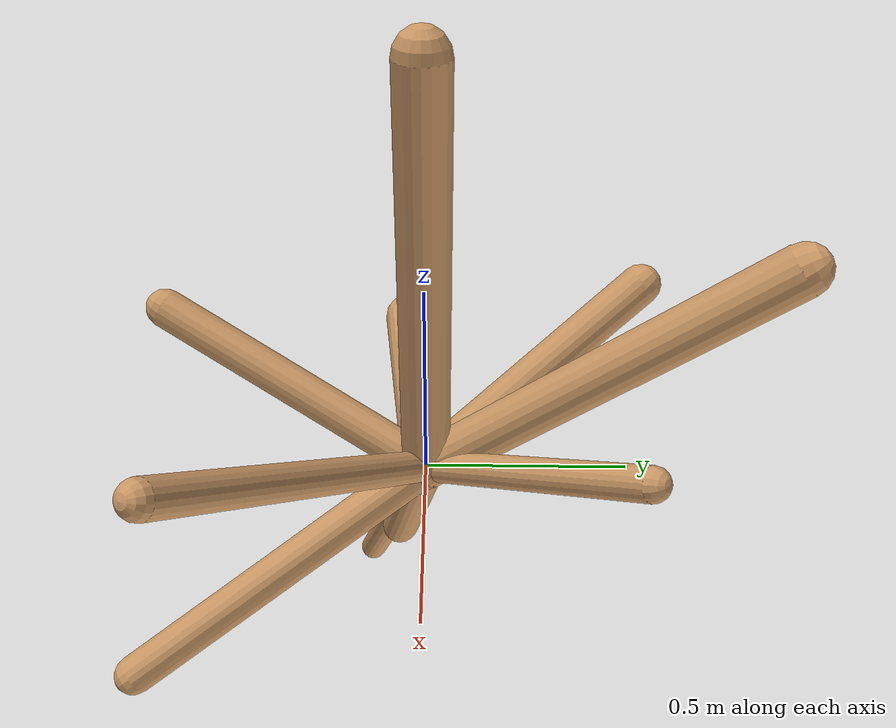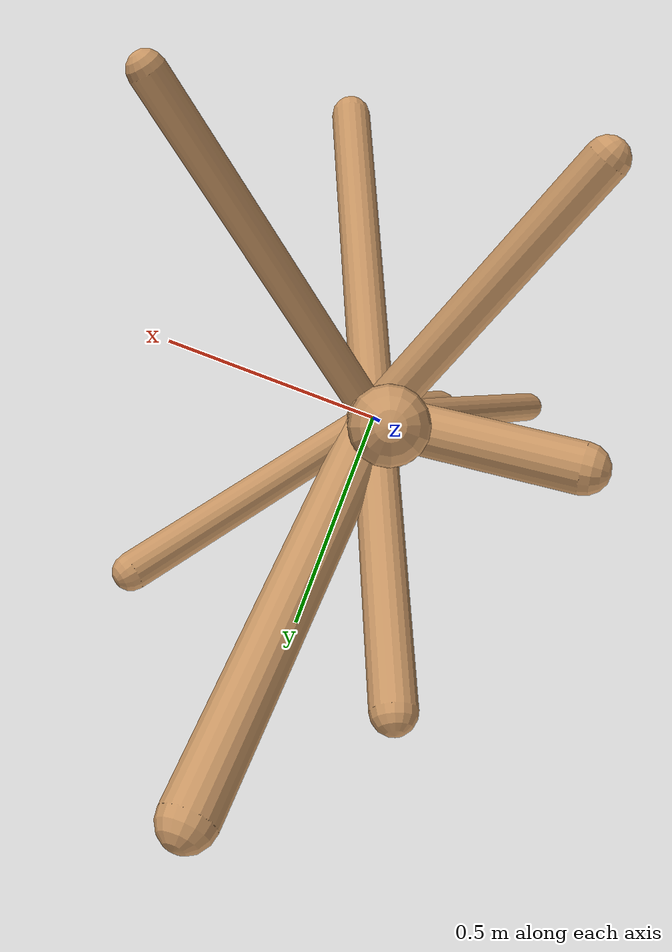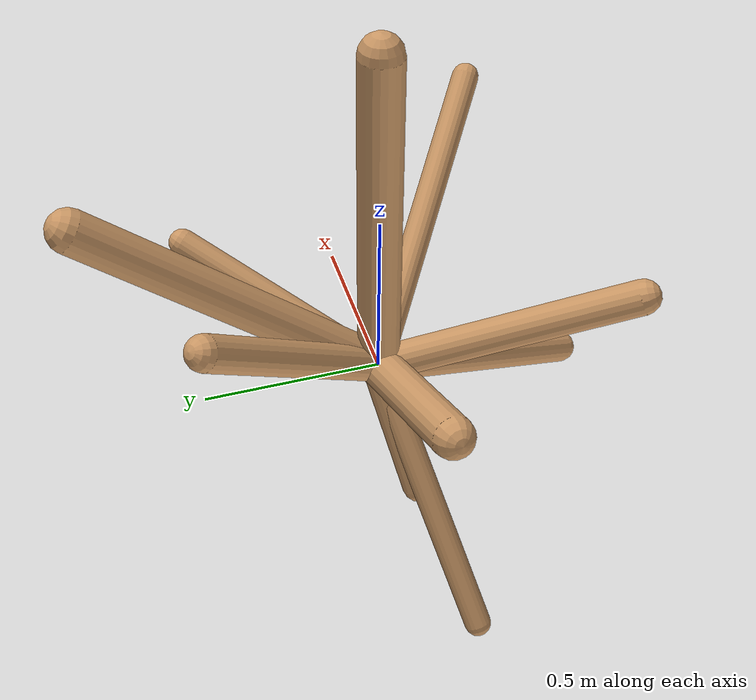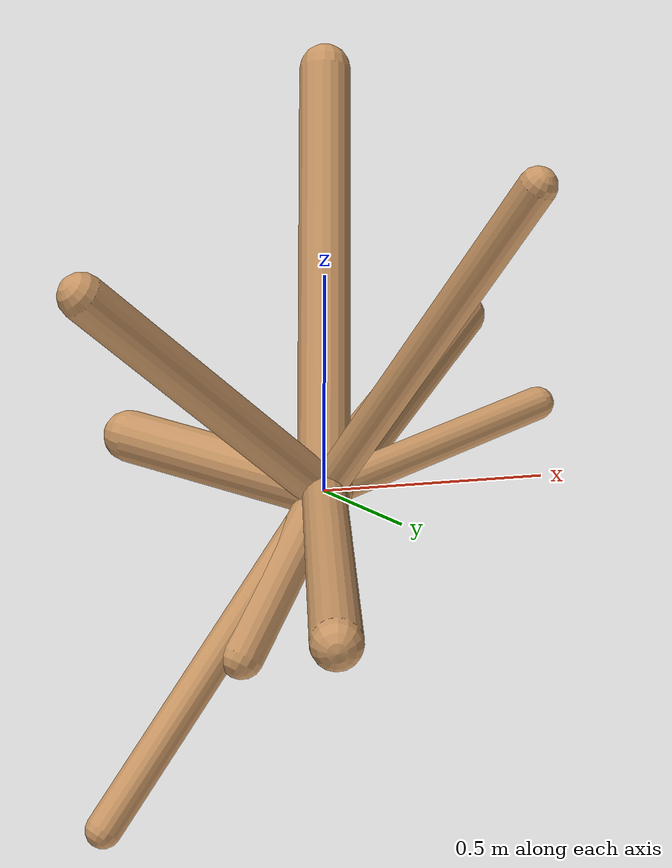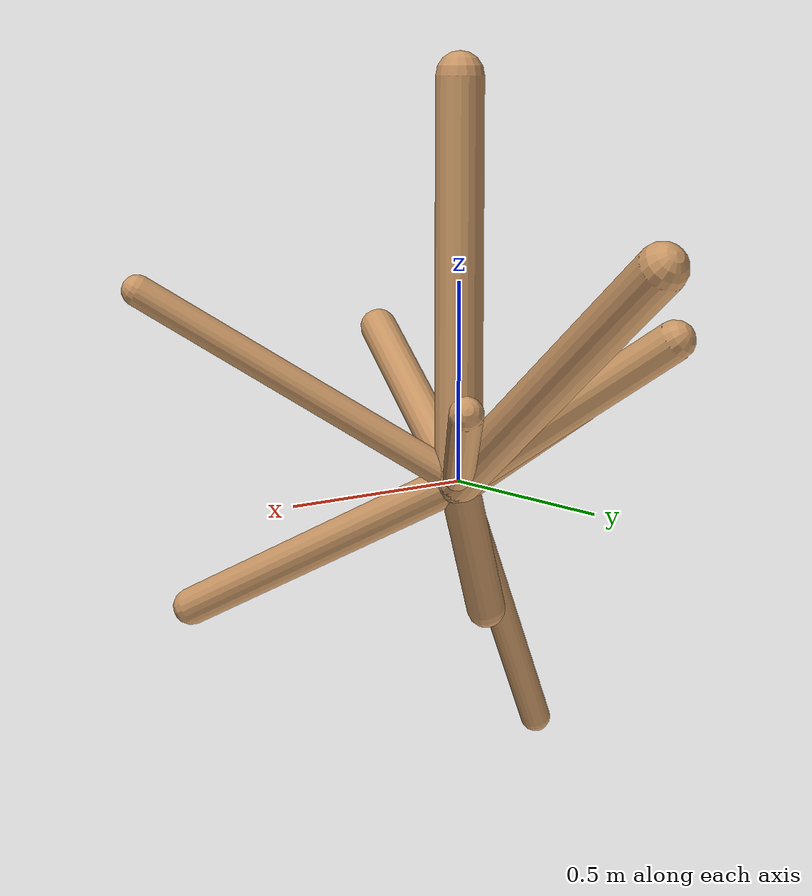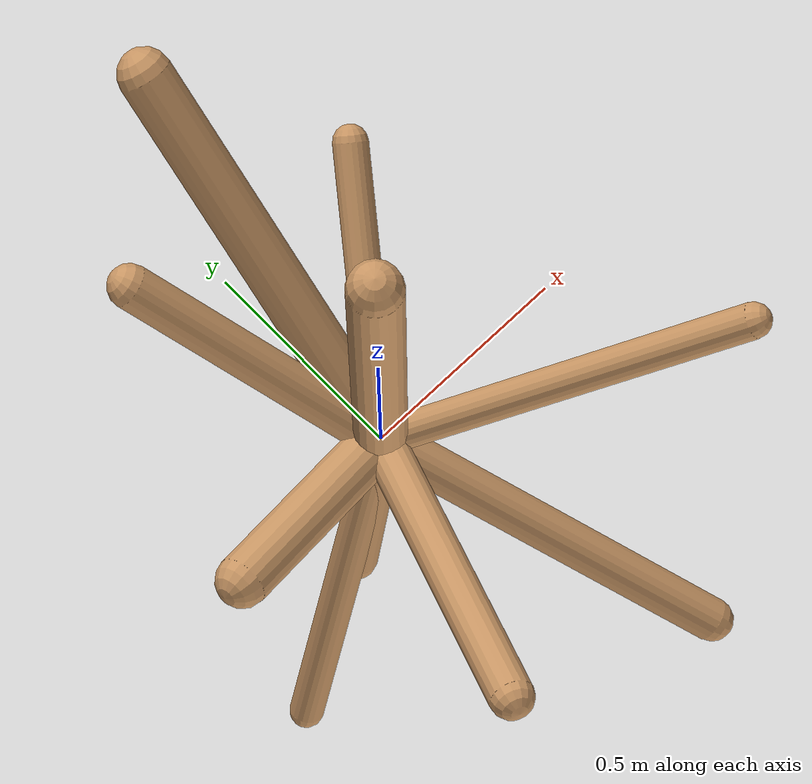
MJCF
<!--
                    joint_number: 9
                    -->
                    <mujoco model="randomrobot">
                        <compiler angle="degree" coordinate="global" inertiafromgeom="true"/>
                        <default>
                        <joint armature="0.01" damping=".1" limited="true"/>
                        <geom conaffinity="0" condim="3" contype="1" density="1000" friction="0.8 .1 .1" rgba="0.8 0.6 .4 1"/>
                        </default>
                        <option integrator="RK4" timestep="0.002"/>
                        <worldbody>
                    <body name='torso' pos='0.00 0.00 0.60'><geom fromto='0 0 0 0.00 0.00 1.00' name='torso_geom' size='0.06' type='capsule'/><inertial mass='0.3'/><body name='L0_D1' pos='0.00 0.00 0.78'><joint axis='0 1 0' name='L0_D1_joint' pos='0 0 0' range='6.31 129.96' type='hinge'/><geom fromto='0 0 0 -0.43 -0.19 -0.74' name='L0_D1_geom' size='0.04' type='capsule'/><inertial mass='0.3'/></body><body name='L1_D1' pos='0.00 0.00 0.91'><joint axis='1 0 0' name='L1_D1_joint' pos='0 0 0' range='64.50 170.84' type='hinge'/><geom fromto='0 0 0 -0.25 -0.66 0.30' name='L1_D1_geom' size='0.05' type='capsule'/><inertial mass='0.3'/></body><body name='L2_D1' pos='0.00 0.00 0.94'><joint axis='0 1 0' name='L2_D1_joint' pos='0 0 0' range='94.65 141.78' type='hinge'/><geom fromto='0 0 0 0.07 0.78 0.60' name='L2_D1_geom' size='0.06' type='capsule'/><inertial mass='0.3'/><body name='L3_D0' pos='0.01 0.06 0.05'><joint axis='0 0 1' name='L3_D0_joint' pos='0 0 0' range='58.42 128.20' type='hinge'/><geom fromto='0 0 0 0.33 -0.73 -0.42' name='L3_D0_geom' size='0.05' type='capsule'/><inertial mass='0.3'/></body><body name='L4_D0' pos='0.05 0.48 0.37'><joint axis='1 0 0' name='L4_D0_joint' pos='0 0 0' range='12.01 50.36' type='hinge'/><geom fromto='0 0 0 0.64 -0.46 0.48' name='L4_D0_geom' size='0.04' type='capsule'/><inertial mass='0.3'/></body><body name='L5_D0' pos='0.04 0.41 0.31'><joint axis='1 0 0' name='L5_D0_joint' pos='0 0 0' range='68.13 113.52' type='hinge'/><geom fromto='0 0 0 0.36 0.47 0.27' name='L5_D0_geom' size='0.04' type='capsule'/><inertial mass='0.3'/></body></body><body name='L6_D1' pos='0.00 0.00 0.40'><joint axis='0 1 0' name='L6_D1_joint' pos='0 0 0' range='37.69 97.54' type='hinge'/><geom fromto='0 0 0 -0.16 -0.08 -0.37' name='L6_D1_geom' size='0.05' type='capsule'/><inertial mass='0.3'/><body name='L7_D0' pos='-0.01 -0.00 -0.01'><joint axis='1 0 0' name='L7_D0_joint' pos='0 0 0' range='67.31 97.49' type='hinge'/><geom fromto='0 0 0 -0.46 -0.06 0.15' name='L7_D0_geom' size='0.06' type='capsule'/><inertial mass='0.3'/></body><body name='L8_D0' pos='-0.02 -0.01 -0.05'><joint axis='1 0 0' name='L8_D0_joint' pos='0 0 0' range='17.89 128.53' type='hinge'/><geom fromto='0 0 0 -0.23 0.52 0.39' name='L8_D0_geom' size='0.05' type='capsule'/><inertial mass='0.3'/></body></body></body>
                        </worldbody>
                    </mujoco>
